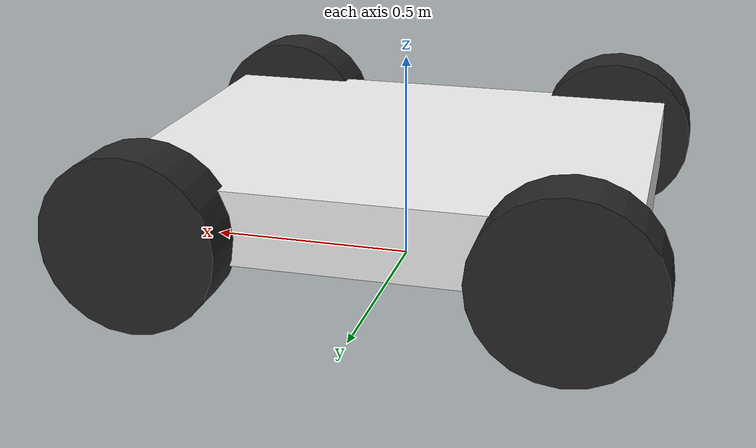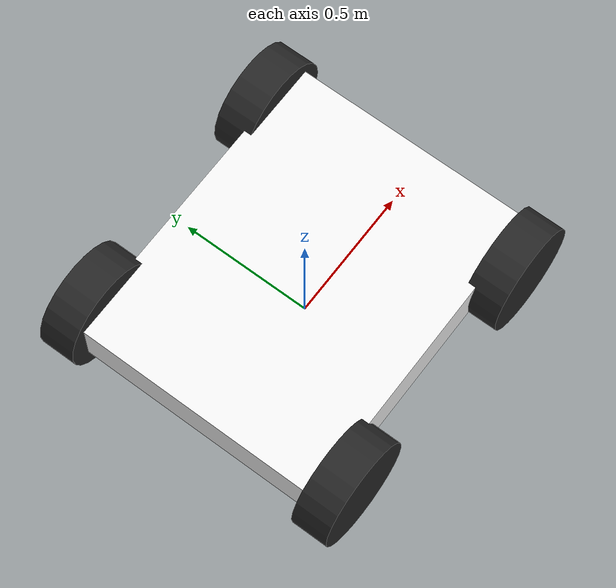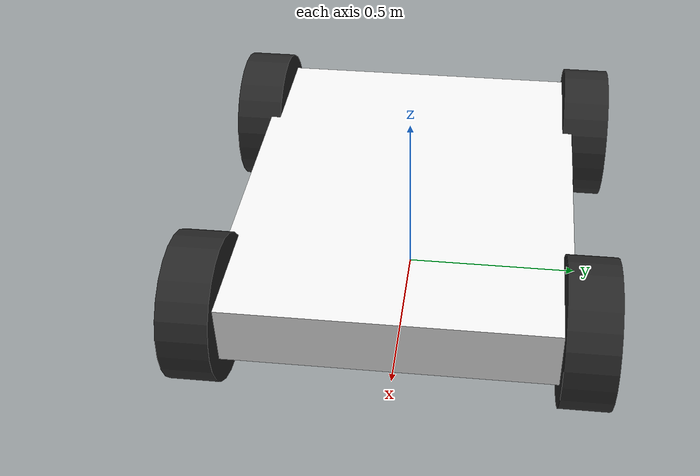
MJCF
<mujoco model="pusher_dummy_3d_light">
  <compiler angle="radian"/>
  <default>
    <geom rgba="0.6 0.2 0.2 1.0" friction="0.6 0.005 0.0001"/>
  </default>
  <worldbody>
    <body name="chassis" pos="0 0 0.22">
      <freejoint name="root"/>
      <!-- Plastic chassis: density=950 from materials_store.yaml -->
      <geom name="body" type="box" size="0.59 0.47 0.085" density="950"
            friction="0.25 0.005 0.0001" rgba="0.95 0.95 0.95 1"/>
      <body name="wfl" pos="0.46 0.51 -0.02">
        <joint name="j_fl" type="hinge" axis="0 1 0"/>
        <!-- Rubber tires: density=1200, friction=1.2 from materials_store.yaml -->
        <geom name="g_fl" type="cylinder" size="0.20 0.068" euler="1.5708 0 0"
              density="1200" friction="1.2 0.005 0.0001" priority="2"
              rgba="0.15 0.15 0.15 1"/>
      </body>
      <body name="wfr" pos="0.46 -0.51 -0.02">
        <joint name="j_fr" type="hinge" axis="0 1 0"/>
        <geom name="g_fr" type="cylinder" size="0.20 0.068" euler="1.5708 0 0"
              density="1200" friction="1.2 0.005 0.0001" priority="2"
              rgba="0.15 0.15 0.15 1"/>
      </body>
      <body name="wrl" pos="-0.46 0.51 -0.02">
        <joint name="j_rl" type="hinge" axis="0 1 0"/>
        <geom name="g_rl" type="cylinder" size="0.20 0.068" euler="1.5708 0 0"
              density="1200" friction="1.2 0.005 0.0001" priority="2"
              rgba="0.15 0.15 0.15 1"/>
      </body>
      <body name="wrr" pos="-0.46 -0.51 -0.02">
        <joint name="j_rr" type="hinge" axis="0 1 0"/>
        <geom name="g_rr" type="cylinder" size="0.20 0.068" euler="1.5708 0 0"
              density="1200" friction="1.2 0.005 0.0001" priority="2"
              rgba="0.15 0.15 0.15 1"/>
      </body>
    </body>
  </worldbody>
  <actuator>
    <motor name="m_fl" joint="j_fl" gear="150"/>
    <motor name="m_fr" joint="j_fr" gear="150"/>
    <motor name="m_rl" joint="j_rl" gear="150"/>
    <motor name="m_rr" joint="j_rr" gear="150"/>
  </actuator>
</mujoco>
